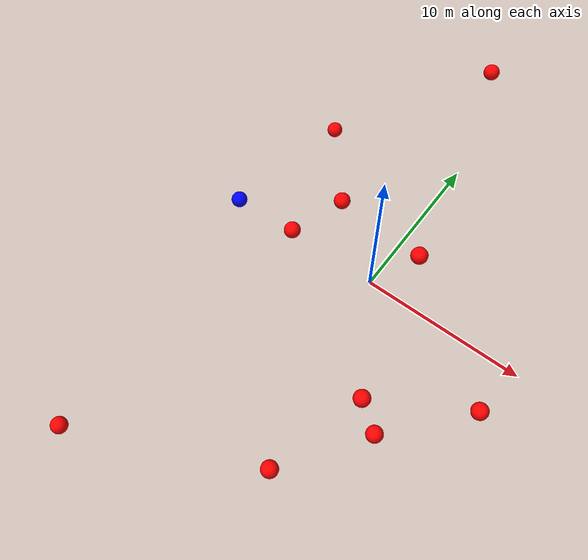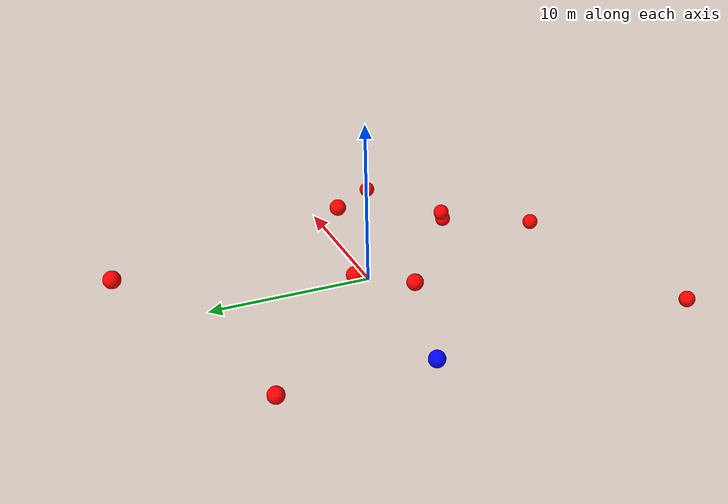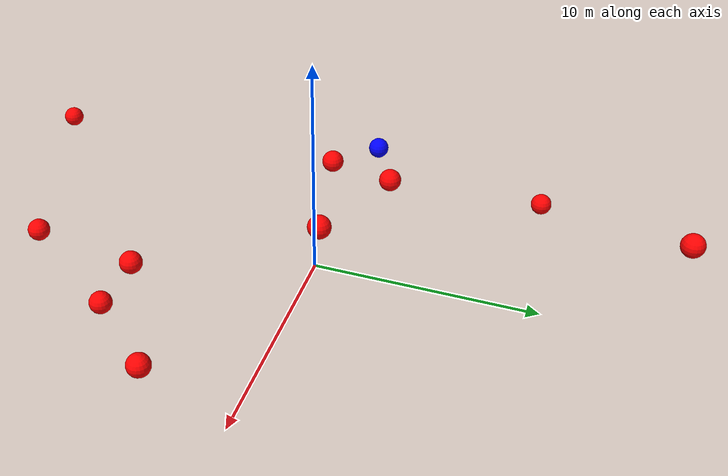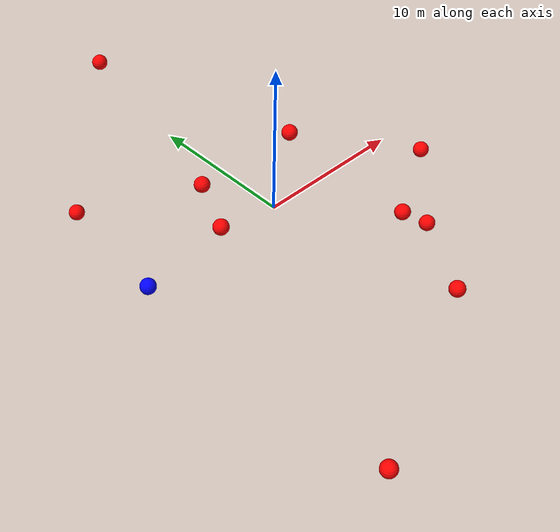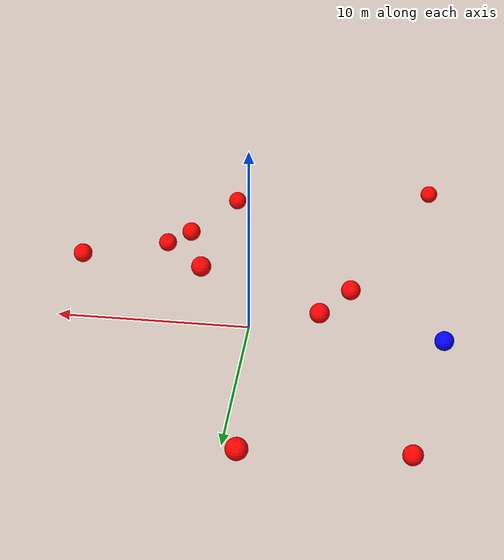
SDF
<?xml version="1.0" ?>
<sdf version="1.8">
    <world name="3d_world">
        <physics name="1ms" type="ode">
            <max_step_size>0.001</max_step_size>
            <real_time_factor>1.0</real_time_factor>
            <real_time_update_rate>1000.0</real_time_update_rate>
        </physics>
        <gravity>0 0 0</gravity>

        <plugin
            filename="gz-sim-physics-system"
            name="gz::sim::v8::systems::Physics">
        </plugin>
        <plugin
            filename="libignition-gazebo-user-commands-system.so"
            name="ignition::gazebo::systems::UserCommands">
        </plugin>
        <plugin
            filename="gz-sim-scene-broadcaster-system"
            name="gz::sim::systems::SceneBroadcaster">
        </plugin>
        <plugin
            filename="gz-sim-sensors-system"
            name="gz::sim::systems::Sensors">
            <render_engine>ogre2</render_engine>
        </plugin>

        <light type="directional" name="sun">
            <cast_shadows>true</cast_shadows>
            <pose>0 0 10 0 0 0</pose>
            <diffuse>0.8 0.8 0.8 1</diffuse>
            <specular>0.2 0.2 0.2 1</specular>
            <attenuation>
                <range>1000</range>
                <constant>0.9</constant>
                <linear>0.01</linear>
                <quadratic>0.001</quadratic>
            </attenuation>
            <direction>-0.5 0.1 -0.9</direction>
        </light>

        <!-- AGENTE -->
        <model name='agente' canonical_link='chassis'>
            <pose relative_to='world'>-10.0 0 0.0 0 0 0</pose>
            <link name='chassis'>
                <pose relative_to='__model__'>0.0 0 0.0 0 0 0</pose>
                <inertial>
                    <mass>1.14395</mass>
                    <inertia>
                        <ixx>0.095329</ixx>
                        <ixy>0</ixy>
                        <ixz>0</ixz>
                        <iyy>0.381317</iyy>
                        <iyz>0</iyz>
                        <izz>0.476646</izz>
                    </inertia>
                </inertial>
                <visual name='visual'>
                    <geometry>
                        <sphere>
                            <radius>0.5</radius>
                        </sphere>
                    </geometry>
                    <material>
                        <ambient>0.0 0.0 1.0 1</ambient>
                        <diffuse>0.0 0.0 1.0 1</diffuse>
                        <specular>0.0 0.0 1.0 1</specular>
                    </material>
                </visual>
                <collision name='collision'>
                    <geometry>
                        <sphere>
                            <radius>0.5</radius>
                        </sphere>
                    </geometry>
                </collision>
                <enable_gravity>false</enable_gravity>
            </link>

            <link name='lidar_link'>
                <pose relative_to='chassis'>0.0 0 0.1 0 0 0</pose>
                <inertial>
                    <mass>0.1</mass>
                    <inertia>
                        <ixx>0.000166667</ixx>
                        <iyy>0.000166667</iyy>
                        <izz>0.000166667</izz>
                    </inertia>
                </inertial>
                <collision name='collision'>
                    <geometry>
                        <cylinder>
                            <radius>0.05</radius>
                            <length>0.1</length>
                        </cylinder>
                    </geometry>
                </collision>
                <visual name='visual'>
                    <geometry>
                        <cylinder>
                            <radius>0.05</radius>
                            <length>0.1</length>
                        </cylinder>
                    </geometry>
                    <material>
                        <ambient>0.0 1.0 0.0 1</ambient>
                        <diffuse>0.0 1.0 0.0 1</diffuse>
                        <specular>0.0 1.0 0.0 1</specular>
                    </material>
                </visual>
                <sensor name="lidar" type="gpu_lidar">
                    <topic>scan</topic>
                    <update_rate>10</update_rate>
                    <lidar>
                        <scan>
                            <horizontal>
                                <samples>5000</samples>
                                <resolution>1</resolution>
                                <min_angle>-3.14159</min_angle>
                                <max_angle>3.14159</max_angle>
                            </horizontal>
                        </scan>
                        <range>
                            <min>0.1</min>
                            <max>10.0</max>
                            <resolution>0.01</resolution>
                        </range>
                    </lidar>
                    <visualize>true</visualize>
                    <always_on>true</always_on>
                    <update_rate>10</update_rate>
                    <pose_frame>lidar</pose_frame>
                </sensor>
                <enable_gravity>false</enable_gravity>
            </link>

            <joint name="lidar_joint" type="fixed">
                <parent>chassis</parent>
                <child>lidar_link</child>
            </joint>

            <plugin
                filename="ignition-gazebo-joint-state-publisher-system"
                name="ignition::gazebo::systems::JointStatePublisher">
            </plugin>
            <plugin
                filename="ignition-gazebo-odometry-publisher-system"
                name="ignition::gazebo::systems::OdometryPublisher">
                <dimensions>3</dimensions>
            </plugin>
            <plugin
                filename="ignition-gazebo-velocity-control-system"
                name="ignition::gazebo::systems::VelocityControl">
                <initial_linear>0.0 0 0</initial_linear>
                <initial_angular>0 0 0.0</initial_angular>
            </plugin>
            <plugin
                filename="libignition-gazebo-pose-publisher-system.so"
                name="ignition::gazebo::systems::PosePublisher">
                <topic>/agente/pose</topic>
                <frame_id>agente</frame_id>
                <update_rate>30</update_rate>
            </plugin>
        </model>

        <!-- OBSTACLE 1 -->
        <model name='obstacle_1' canonical_link='obstacle'>
            <static>false</static>
            <pose relative_to='world'>-8.76 8.71 -0.70 0 0 0</pose>
            <link name='obstacle'>
                <pose relative_to='__model__'>0.0 0 0.0 0 0 0</pose>
                <visual name='visual'>
                    <geometry>
                        <sphere>
                            <radius>0.50</radius>
                        </sphere>
                    </geometry>
                    <material>
                        <ambient>1.0 0.0 0.0 1</ambient>
                        <diffuse>1.0 0.0 0.0 1</diffuse>
                        <specular>1.0 0.0 0.0 1</specular>
                    </material>
                </visual>
                <collision name='collision'>
                    <geometry>
                        <sphere>
                            <radius>0.50</radius>
                        </sphere>
                    </geometry>
                </collision>
                <enable_gravity>false</enable_gravity>
            </link>

            <plugin
                filename="ignition-gazebo-velocity-control-system"
                name="ignition::gazebo::systems::VelocityControl">
                <initial_linear>1.50 -1.32 0.11</initial_linear>
                <initial_angular>0 0 0</initial_angular>
            </plugin>

            <plugin
                filename="ignition-gazebo-odometry-publisher-system"
                name="ignition::gazebo::systems::OdometryPublisher">
                <dimensions>3</dimensions>
            </plugin>
        </model>

        <!-- OBSTACLE 2 -->
        <model name='obstacle_2' canonical_link='obstacle'>
            <static>false</static>
            <pose relative_to='world'>-1.42 15.29 3.98 0 0 0</pose>
            <link name='obstacle'>
                <pose relative_to='__model__'>0.0 0 0.0 0 0 0</pose>
                <visual name='visual'>
                    <geometry>
                        <sphere>
                            <radius>0.50</radius>
                        </sphere>
                    </geometry>
                    <material>
                        <ambient>1.0 0.0 0.0 1</ambient>
                        <diffuse>1.0 0.0 0.0 1</diffuse>
                        <specular>1.0 0.0 0.0 1</specular>
                    </material>
                </visual>
                <collision name='collision'>
                    <geometry>
                        <sphere>
                            <radius>0.50</radius>
                        </sphere>
                    </geometry>
                </collision>
                <enable_gravity>false</enable_gravity>
            </link>

            <plugin
                filename="ignition-gazebo-velocity-control-system"
                name="ignition::gazebo::systems::VelocityControl">
                <initial_linear>0.45 -1.89 -0.49</initial_linear>
                <initial_angular>0 0 0</initial_angular>
            </plugin>

            <plugin
                filename="ignition-gazebo-odometry-publisher-system"
                name="ignition::gazebo::systems::OdometryPublisher">
                <dimensions>3</dimensions>
            </plugin>
        </model>

        <!-- OBSTACLE 3 -->
        <model name='obstacle_3' canonical_link='obstacle'>
            <static>false</static>
            <pose relative_to='world'>-8.84 -17.32 -0.83 0 0 0</pose>
            <link name='obstacle'>
                <pose relative_to='__model__'>0.0 0 0.0 0 0 0</pose>
                <visual name='visual'>
                    <geometry>
                        <sphere>
                            <radius>0.50</radius>
                        </sphere>
                    </geometry>
                    <material>
                        <ambient>1.0 0.0 0.0 1</ambient>
                        <diffuse>1.0 0.0 0.0 1</diffuse>
                        <specular>1.0 0.0 0.0 1</specular>
                    </material>
                </visual>
                <collision name='collision'>
                    <geometry>
                        <sphere>
                            <radius>0.50</radius>
                        </sphere>
                    </geometry>
                </collision>
                <enable_gravity>false</enable_gravity>
            </link>

            <plugin
                filename="ignition-gazebo-velocity-control-system"
                name="ignition::gazebo::systems::VelocityControl">
                <initial_linear>1.16 1.62 0.08</initial_linear>
                <initial_angular>0 0 0</initial_angular>
            </plugin>

            <plugin
                filename="ignition-gazebo-odometry-publisher-system"
                name="ignition::gazebo::systems::OdometryPublisher">
                <dimensions>3</dimensions>
            </plugin>
        </model>

        <!-- OBSTACLE 4 -->
        <model name='obstacle_4' canonical_link='obstacle'>
            <static>false</static>
            <pose relative_to='world'>9.41 -3.69 1.61 0 0 0</pose>
            <link name='obstacle'>
                <pose relative_to='__model__'>0.0 0 0.0 0 0 0</pose>
                <visual name='visual'>
                    <geometry>
                        <sphere>
                            <radius>0.50</radius>
                        </sphere>
                    </geometry>
                    <material>
                        <ambient>1.0 0.0 0.0 1</ambient>
                        <diffuse>1.0 0.0 0.0 1</diffuse>
                        <specular>1.0 0.0 0.0 1</specular>
                    </material>
                </visual>
                <collision name='collision'>
                    <geometry>
                        <sphere>
                            <radius>0.50</radius>
                        </sphere>
                    </geometry>
                </collision>
                <enable_gravity>false</enable_gravity>
            </link>

            <plugin
                filename="ignition-gazebo-velocity-control-system"
                name="ignition::gazebo::systems::VelocityControl">
                <initial_linear>-0.35 0.54 -0.24</initial_linear>
                <initial_angular>0 0 0</initial_angular>
            </plugin>

            <plugin
                filename="ignition-gazebo-odometry-publisher-system"
                name="ignition::gazebo::systems::OdometryPublisher">
                <dimensions>3</dimensions>
            </plugin>
        </model>

        <!-- OBSTACLE 5 -->
        <model name='obstacle_5' canonical_link='obstacle'>
            <static>false</static>
            <pose relative_to='world'>-5.12 -0.87 2.11 0 0 0</pose>
            <link name='obstacle'>
                <pose relative_to='__model__'>0.0 0 0.0 0 0 0</pose>
                <visual name='visual'>
                    <geometry>
                        <sphere>
                            <radius>0.50</radius>
                        </sphere>
                    </geometry>
                    <material>
                        <ambient>1.0 0.0 0.0 1</ambient>
                        <diffuse>1.0 0.0 0.0 1</diffuse>
                        <specular>1.0 0.0 0.0 1</specular>
                    </material>
                </visual>
                <collision name='collision'>
                    <geometry>
                        <sphere>
                            <radius>0.50</radius>
                        </sphere>
                    </geometry>
                </collision>
                <enable_gravity>false</enable_gravity>
            </link>

            <plugin
                filename="ignition-gazebo-velocity-control-system"
                name="ignition::gazebo::systems::VelocityControl">
                <initial_linear>1.40 0.20 -0.48</initial_linear>
                <initial_angular>0 0 0</initial_angular>
            </plugin>

            <plugin
                filename="ignition-gazebo-odometry-publisher-system"
                name="ignition::gazebo::systems::OdometryPublisher">
                <dimensions>3</dimensions>
            </plugin>
        </model>

        <!-- OBSTACLE 6 -->
        <model name='obstacle_6' canonical_link='obstacle'>
            <static>false</static>
            <pose relative_to='world'>2.25 1.02 4.07 0 0 0</pose>
            <link name='obstacle'>
                <pose relative_to='__model__'>0.0 0 0.0 0 0 0</pose>
                <visual name='visual'>
                    <geometry>
                        <sphere>
                            <radius>0.50</radius>
                        </sphere>
                    </geometry>
                    <material>
                        <ambient>1.0 0.0 0.0 1</ambient>
                        <diffuse>1.0 0.0 0.0 1</diffuse>
                        <specular>1.0 0.0 0.0 1</specular>
                    </material>
                </visual>
                <collision name='collision'>
                    <geometry>
                        <sphere>
                            <radius>0.50</radius>
                        </sphere>
                    </geometry>
                </collision>
                <enable_gravity>false</enable_gravity>
            </link>

            <plugin
                filename="ignition-gazebo-velocity-control-system"
                name="ignition::gazebo::systems::VelocityControl">
                <initial_linear>0.64 -0.15 -0.62</initial_linear>
                <initial_angular>0 0 0</initial_angular>
            </plugin>

            <plugin
                filename="ignition-gazebo-odometry-publisher-system"
                name="ignition::gazebo::systems::OdometryPublisher">
                <dimensions>3</dimensions>
            </plugin>
        </model>

        <!-- OBSTACLE 7 -->
        <model name='obstacle_7' canonical_link='obstacle'>
            <static>false</static>
            <pose relative_to='world'>-3.79 2.29 2.62 0 0 0</pose>
            <link name='obstacle'>
                <pose relative_to='__model__'>0.0 0 0.0 0 0 0</pose>
                <visual name='visual'>
                    <geometry>
                        <sphere>
                            <radius>0.50</radius>
                        </sphere>
                    </geometry>
                    <material>
                        <ambient>1.0 0.0 0.0 1</ambient>
                        <diffuse>1.0 0.0 0.0 1</diffuse>
                        <specular>1.0 0.0 0.0 1</specular>
                    </material>
                </visual>
                <collision name='collision'>
                    <geometry>
                        <sphere>
                            <radius>0.50</radius>
                        </sphere>
                    </geometry>
                </collision>
                <enable_gravity>false</enable_gravity>
            </link>

            <plugin
                filename="ignition-gazebo-velocity-control-system"
                name="ignition::gazebo::systems::VelocityControl">
                <initial_linear>-0.13 -0.97 -1.11</initial_linear>
                <initial_angular>0 0 0</initial_angular>
            </plugin>

            <plugin
                filename="ignition-gazebo-odometry-publisher-system"
                name="ignition::gazebo::systems::OdometryPublisher">
                <dimensions>3</dimensions>
            </plugin>
        </model>

        <!-- OBSTACLE 8 -->
        <model name='obstacle_8' canonical_link='obstacle'>
            <static>false</static>
            <pose relative_to='world'>4.03 -6.81 1.55 0 0 0</pose>
            <link name='obstacle'>
                <pose relative_to='__model__'>0.0 0 0.0 0 0 0</pose>
                <visual name='visual'>
                    <geometry>
                        <sphere>
                            <radius>0.50</radius>
                        </sphere>
                    </geometry>
                    <material>
                        <ambient>1.0 0.0 0.0 1</ambient>
                        <diffuse>1.0 0.0 0.0 1</diffuse>
                        <specular>1.0 0.0 0.0 1</specular>
                    </material>
                </visual>
                <collision name='collision'>
                    <geometry>
                        <sphere>
                            <radius>0.50</radius>
                        </sphere>
                    </geometry>
                </collision>
                <enable_gravity>false</enable_gravity>
            </link>

            <plugin
                filename="ignition-gazebo-velocity-control-system"
                name="ignition::gazebo::systems::VelocityControl">
                <initial_linear>0.00 1.21 -0.28</initial_linear>
                <initial_angular>0 0 0</initial_angular>
            </plugin>

            <plugin
                filename="ignition-gazebo-odometry-publisher-system"
                name="ignition::gazebo::systems::OdometryPublisher">
                <dimensions>3</dimensions>
            </plugin>
        </model>

        <!-- OBSTACLE 9 -->
        <model name='obstacle_9' canonical_link='obstacle'>
            <static>false</static>
            <pose relative_to='world'>5.51 -7.63 0.30 0 0 0</pose>
            <link name='obstacle'>
                <pose relative_to='__model__'>0.0 0 0.0 0 0 0</pose>
                <visual name='visual'>
                    <geometry>
                        <sphere>
                            <radius>0.50</radius>
                        </sphere>
                    </geometry>
                    <material>
                        <ambient>1.0 0.0 0.0 1</ambient>
                        <diffuse>1.0 0.0 0.0 1</diffuse>
                        <specular>1.0 0.0 0.0 1</specular>
                    </material>
                </visual>
                <collision name='collision'>
                    <geometry>
                        <sphere>
                            <radius>0.50</radius>
                        </sphere>
                    </geometry>
                </collision>
                <enable_gravity>false</enable_gravity>
            </link>

            <plugin
                filename="ignition-gazebo-velocity-control-system"
                name="ignition::gazebo::systems::VelocityControl">
                <initial_linear>-0.13 1.29 -0.05</initial_linear>
                <initial_angular>0 0 0</initial_angular>
            </plugin>

            <plugin
                filename="ignition-gazebo-odometry-publisher-system"
                name="ignition::gazebo::systems::OdometryPublisher">
                <dimensions>3</dimensions>
            </plugin>
        </model>

        <!-- OBSTACLE 10 -->
        <model name='obstacle_10' canonical_link='obstacle'>
            <static>false</static>
            <pose relative_to='world'>2.23 -12.54 0.54 0 0 0</pose>
            <link name='obstacle'>
                <pose relative_to='__model__'>0.0 0 0.0 0 0 0</pose>
                <visual name='visual'>
                    <geometry>
                        <sphere>
                            <radius>0.50</radius>
                        </sphere>
                    </geometry>
                    <material>
                        <ambient>1.0 0.0 0.0 1</ambient>
                        <diffuse>1.0 0.0 0.0 1</diffuse>
                        <specular>1.0 0.0 0.0 1</specular>
                    </material>
                </visual>
                <collision name='collision'>
                    <geometry>
                        <sphere>
                            <radius>0.50</radius>
                        </sphere>
                    </geometry>
                </collision>
                <enable_gravity>false</enable_gravity>
            </link>

            <plugin
                filename="ignition-gazebo-velocity-control-system"
                name="ignition::gazebo::systems::VelocityControl">
                <initial_linear>0.15 1.99 -0.09</initial_linear>
                <initial_angular>0 0 0</initial_angular>
            </plugin>

            <plugin
                filename="ignition-gazebo-odometry-publisher-system"
                name="ignition::gazebo::systems::OdometryPublisher">
                <dimensions>3</dimensions>
            </plugin>
        </model>

    </world>
</sdf>
